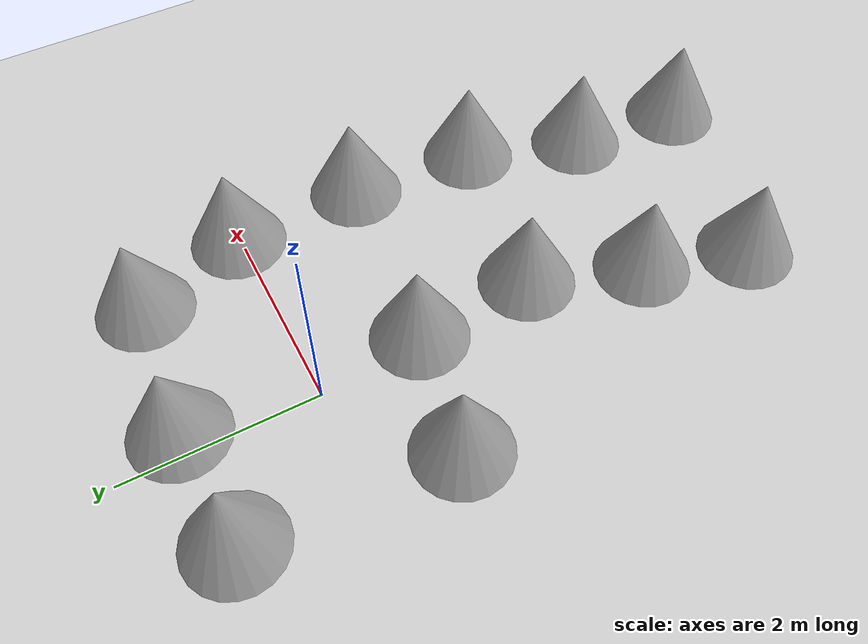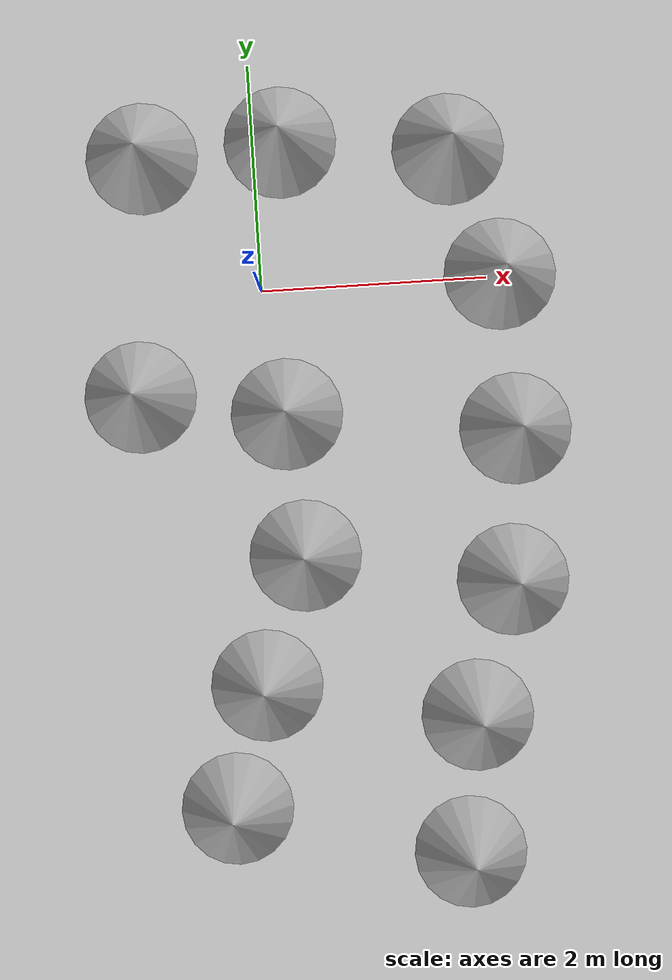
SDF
<sdf version='1.10'>
  <world name='empty'>
    <physics name='1ms' type='ignored'>
      <max_step_size>0.001</max_step_size>
      <real_time_factor>1</real_time_factor>
      <real_time_update_rate>1000</real_time_update_rate>
    </physics>
    <plugin name='gz::sim::systems::Physics' filename='gz-sim-physics-system'/>
    <plugin name='gz::sim::systems::UserCommands' filename='gz-sim-user-commands-system'/>
    <plugin name='gz::sim::systems::SceneBroadcaster' filename='gz-sim-scene-broadcaster-system'/>
    <plugin name='gz::sim::systems::Contact' filename='gz-sim-contact-system'/>

    <plugin filename="gz-sim-sensors-system" name="gz::sim::systems::Sensors">
      <render_engine>ogre</render_engine>
    </plugin>

    <gravity>0 0 -9.8000000000000007</gravity>
    <magnetic_field>5.5644999999999998e-06 2.2875799999999999e-05 -4.2388400000000002e-05</magnetic_field>
    <atmosphere type='adiabatic'/>
    <scene>
      <ambient>0.400000006 0.400000006 0.400000006 1</ambient>
      <background>0.699999988 0.699999988 0.699999988 1</background>
      <shadows>true</shadows>
    </scene>
    <model name='ground_plane'>
      <static>true</static>
      <link name='link'>
        <collision name='collision'>
          <geometry>
            <plane>
              <normal>0 0 1</normal>
              <size>100 100</size>
            </plane>
          </geometry>
          <surface>
            <friction>
              <ode/>
            </friction>
            <bounce/>
            <contact/>
          </surface>
        </collision>
        <visual name='visual'>
          <geometry>
            <plane>
              <normal>0 0 1</normal>
              <size>100 100</size>
            </plane>
          </geometry>
          <material>
            <ambient>0.800000012 0.800000012 0.800000012 1</ambient>
            <diffuse>0.800000012 0.800000012 0.800000012 1</diffuse>
            <specular>0.800000012 0.800000012 0.800000012 1</specular>
          </material>
        </visual>
        <pose>0 0 0 0 0 0</pose>
        <inertial>
          <pose>0 0 0 0 0 0</pose>
          <mass>1</mass>
          <inertia>
            <ixx>1</ixx>
            <ixy>0</ixy>
            <ixz>0</ixz>
            <iyy>1</iyy>
            <iyz>0</iyz>
            <izz>1</izz>
          </inertia>
        </inertial>
        <enable_wind>false</enable_wind>
      </link>
      <pose>0 0 0 0 0 0</pose>
      <self_collide>false</self_collide>
    </model>
    <model name='cone'>
      <pose>0.24221028216544344 1.3106896720690939 0.49999999993296756 5.2542459743498789e-17 -7.7132841040630513e-10 -1.1855016086255925e-22</pose>
      <link name='cone_link'>
        <inertial>
          <inertia>
            <ixx>0.074999999999999997</ixx>
            <ixy>0</ixy>
            <ixz>0</ixz>
            <iyy>0.074999999999999997</iyy>
            <iyz>0</iyz>
            <izz>0.074999999999999997</izz>
          </inertia>
          <mass>1</mass>
          <pose>0 0 0 0 0 0</pose>
        </inertial>
        <collision name='cone_collision'>
          <geometry>
            <cone>
              <radius>0.5</radius>
              <length>1</length>
            </cone>
          </geometry>
          <surface>
            <friction>
              <ode/>
            </friction>
            <bounce/>
            <contact/>
          </surface>
        </collision>
        <visual name='cone_visual'>
          <geometry>
            <cone>
              <radius>0.5</radius>
              <length>1</length>
            </cone>
          </geometry>
          <material>
            <ambient>0.300000012 0.300000012 0.300000012 1</ambient>
            <diffuse>0.699999988 0.699999988 0.699999988 1</diffuse>
            <specular>1 1 1 1</specular>
          </material>
        </visual>
        <pose>0 0 0 0 0 0</pose>
        <enable_wind>false</enable_wind>
      </link>
      <static>false</static>
      <self_collide>false</self_collide>
    </model>
    <model name='cone_0'>
      <pose>1.7298803824464843 1.1591823210420871 0.49999999993296756 5.2548876465811307e-17 -7.713284103706065e-10 -1.8784284056842546e-22</pose>
      <link name='cone_link'>
        <inertial>
          <inertia>
            <ixx>0.074999999999999997</ixx>
            <ixy>0</ixy>
            <ixz>0</ixz>
            <iyy>0.074999999999999997</iyy>
            <iyz>0</iyz>
            <izz>0.074999999999999997</izz>
          </inertia>
          <mass>1</mass>
          <pose>0 0 0 0 0 0</pose>
        </inertial>
        <collision name='cone_collision'>
          <geometry>
            <cone>
              <radius>0.5</radius>
              <length>1</length>
            </cone>
          </geometry>
          <surface>
            <friction>
              <ode/>
            </friction>
            <bounce/>
            <contact/>
          </surface>
        </collision>
        <visual name='cone_visual'>
          <geometry>
            <cone>
              <radius>0.5</radius>
              <length>1</length>
            </cone>
          </geometry>
          <material>
            <ambient>0.300000012 0.300000012 0.300000012 1</ambient>
            <diffuse>0.699999988 0.699999988 0.699999988 1</diffuse>
            <specular>1 1 1 1</specular>
          </material>
        </visual>
        <pose>0 0 0 0 0 0</pose>
        <enable_wind>false</enable_wind>
      </link>
      <static>false</static>
      <self_collide>false</self_collide>
    </model>
    <model name='cone_1'>
      <pose>2.1241009359931424 0.022126792105507498 0.49999999993296756 5.2544987975732369e-17 -7.7132841042377457e-10 -9.1533761874780176e-23</pose>
      <link name='cone_link'>
        <inertial>
          <inertia>
            <ixx>0.074999999999999997</ixx>
            <ixy>0</ixy>
            <ixz>0</ixz>
            <iyy>0.074999999999999997</iyy>
            <iyz>0</iyz>
            <izz>0.074999999999999997</izz>
          </inertia>
          <mass>1</mass>
          <pose>0 0 0 0 0 0</pose>
        </inertial>
        <collision name='cone_collision'>
          <geometry>
            <cone>
              <radius>0.5</radius>
              <length>1</length>
            </cone>
          </geometry>
          <surface>
            <friction>
              <ode/>
            </friction>
            <bounce/>
            <contact/>
          </surface>
        </collision>
        <visual name='cone_visual'>
          <geometry>
            <cone>
              <radius>0.5</radius>
              <length>1</length>
            </cone>
          </geometry>
          <material>
            <ambient>0.300000012 0.300000012 0.300000012 1</ambient>
            <diffuse>0.699999988 0.699999988 0.699999988 1</diffuse>
            <specular>1 1 1 1</specular>
          </material>
        </visual>
        <pose>0 0 0 0 0 0</pose>
        <enable_wind>false</enable_wind>
      </link>
      <static>false</static>
      <self_collide>false</self_collide>
    </model>
    <model name='cone_2'>
      <pose>2.1769292694685256 -1.3601867834825385 0.49999999993296756 5.2548969694099936e-17 -7.7132841040276128e-10 -2.0470694501009284e-22</pose>
      <link name='cone_link'>
        <inertial>
          <inertia>
            <ixx>0.074999999999999997</ixx>
            <ixy>0</ixy>
            <ixz>0</ixz>
            <iyy>0.074999999999999997</iyy>
            <iyz>0</iyz>
            <izz>0.074999999999999997</izz>
          </inertia>
          <mass>1</mass>
          <pose>0 0 0 0 0 0</pose>
        </inertial>
        <collision name='cone_collision'>
          <geometry>
            <cone>
              <radius>0.5</radius>
              <length>1</length>
            </cone>
          </geometry>
          <surface>
            <friction>
              <ode/>
            </friction>
            <bounce/>
            <contact/>
          </surface>
        </collision>
        <visual name='cone_visual'>
          <geometry>
            <cone>
              <radius>0.5</radius>
              <length>1</length>
            </cone>
          </geometry>
          <material>
            <ambient>0.300000012 0.300000012 0.300000012 1</ambient>
            <diffuse>0.699999988 0.699999988 0.699999988 1</diffuse>
            <specular>1 1 1 1</specular>
          </material>
        </visual>
        <pose>0 0 0 0 0 0</pose>
        <enable_wind>false</enable_wind>
      </link>
      <static>false</static>
      <self_collide>false</self_collide>
    </model>
    <model name='cone_3'>
      <pose>2.0727332312484088 -2.7004181686616811 0.49999999993296756 5.2543585063411858e-17 -7.7132841043066198e-10 -7.0821554077703735e-23</pose>
      <link name='cone_link'>
        <inertial>
          <inertia>
            <ixx>0.074999999999999997</ixx>
            <ixy>0</ixy>
            <ixz>0</ixz>
            <iyy>0.074999999999999997</iyy>
            <iyz>0</iyz>
            <izz>0.074999999999999997</izz>
          </inertia>
          <mass>1</mass>
          <pose>0 0 0 0 0 0</pose>
        </inertial>
        <collision name='cone_collision'>
          <geometry>
            <cone>
              <radius>0.5</radius>
              <length>1</length>
            </cone>
          </geometry>
          <surface>
            <friction>
              <ode/>
            </friction>
            <bounce/>
            <contact/>
          </surface>
        </collision>
        <visual name='cone_visual'>
          <geometry>
            <cone>
              <radius>0.5</radius>
              <length>1</length>
            </cone>
          </geometry>
          <material>
            <ambient>0.300000012 0.300000012 0.300000012 1</ambient>
            <diffuse>0.699999988 0.699999988 0.699999988 1</diffuse>
            <specular>1 1 1 1</specular>
          </material>
        </visual>
        <pose>0 0 0 0 0 0</pose>
        <enable_wind>false</enable_wind>
      </link>
      <static>false</static>
      <self_collide>false</self_collide>
    </model>
    <model name='cone_4'>
      <pose>1.6838038095773604 -3.8860721555839044 0.49999999993296756 5.2542448694169758e-17 -7.7132841036291103e-10 -1.2097262827116141e-22</pose>
      <link name='cone_link'>
        <inertial>
          <inertia>
            <ixx>0.074999999999999997</ixx>
            <ixy>0</ixy>
            <ixz>0</ixz>
            <iyy>0.074999999999999997</iyy>
            <iyz>0</iyz>
            <izz>0.074999999999999997</izz>
          </inertia>
          <mass>1</mass>
          <pose>0 0 0 0 0 0</pose>
        </inertial>
        <collision name='cone_collision'>
          <geometry>
            <cone>
              <radius>0.5</radius>
              <length>1</length>
            </cone>
          </geometry>
          <surface>
            <friction>
              <ode/>
            </friction>
            <bounce/>
            <contact/>
          </surface>
        </collision>
        <visual name='cone_visual'>
          <geometry>
            <cone>
              <radius>0.5</radius>
              <length>1</length>
            </cone>
          </geometry>
          <material>
            <ambient>0.300000012 0.300000012 0.300000012 1</ambient>
            <diffuse>0.699999988 0.699999988 0.699999988 1</diffuse>
            <specular>1 1 1 1</specular>
          </material>
        </visual>
        <pose>0 0 0 0 0 0</pose>
        <enable_wind>false</enable_wind>
      </link>
      <static>false</static>
      <self_collide>false</self_collide>
    </model>
    <model name='cone_5'>
      <pose>1.5476485248367911 -5.0980476647762956 0.49999999993296756 5.2549568086337689e-17 -7.7132841037102609e-10 2.4181897847869472e-23</pose>
      <link name='cone_link'>
        <inertial>
          <inertia>
            <ixx>0.074999999999999997</ixx>
            <ixy>0</ixy>
            <ixz>0</ixz>
            <iyy>0.074999999999999997</iyy>
            <iyz>0</iyz>
            <izz>0.074999999999999997</izz>
          </inertia>
          <mass>1</mass>
          <pose>0 0 0 0 0 0</pose>
        </inertial>
        <collision name='cone_collision'>
          <geometry>
            <cone>
              <radius>0.5</radius>
              <length>1</length>
            </cone>
          </geometry>
          <surface>
            <friction>
              <ode/>
            </friction>
            <bounce/>
            <contact/>
          </surface>
        </collision>
        <visual name='cone_visual'>
          <geometry>
            <cone>
              <radius>0.5</radius>
              <length>1</length>
            </cone>
          </geometry>
          <material>
            <ambient>0.300000012 0.300000012 0.300000012 1</ambient>
            <diffuse>0.699999988 0.699999988 0.699999988 1</diffuse>
            <specular>1 1 1 1</specular>
          </material>
        </visual>
        <pose>0 0 0 0 0 0</pose>
        <enable_wind>false</enable_wind>
      </link>
      <static>false</static>
      <self_collide>false</self_collide>
    </model>
    <model name='cone_6'>
      <pose>-0.99382622643859175 1.2405596565273438 0.49999999993296756 5.2542459743498789e-17 -7.7132841040630513e-10 -1.1855016086255925e-22</pose>
      <link name='cone_link'>
        <inertial>
          <inertia>
            <ixx>0.074999999999999997</ixx>
            <ixy>0</ixy>
            <ixz>0</ixz>
            <iyy>0.074999999999999997</iyy>
            <iyz>0</iyz>
            <izz>0.074999999999999997</izz>
          </inertia>
          <mass>1</mass>
          <pose>0 0 0 0 0 0</pose>
        </inertial>
        <collision name='cone_collision'>
          <geometry>
            <cone>
              <radius>0.5</radius>
              <length>1</length>
            </cone>
          </geometry>
          <surface>
            <friction>
              <ode/>
            </friction>
            <bounce/>
            <contact/>
          </surface>
        </collision>
        <visual name='cone_visual'>
          <geometry>
            <cone>
              <radius>0.5</radius>
              <length>1</length>
            </cone>
          </geometry>
          <material>
            <ambient>0.300000012 0.300000012 0.300000012 1</ambient>
            <diffuse>0.699999988 0.699999988 0.699999988 1</diffuse>
            <specular>1 1 1 1</specular>
          </material>
        </visual>
        <pose>0 0 0 0 0 0</pose>
        <enable_wind>false</enable_wind>
      </link>
      <static>false</static>
      <self_collide>false</self_collide>
    </model>
    <model name='cone_7'>
      <pose>-1.1362480620466706 -0.87882621988431731 0.49999999993296756 5.2547832261998607e-17 -7.7132841037183135e-10 9.2717783491378131e-23</pose>
      <link name='cone_link'>
        <inertial>
          <inertia>
            <ixx>0.074999999999999997</ixx>
            <ixy>0</ixy>
            <ixz>0</ixz>
            <iyy>0.074999999999999997</iyy>
            <iyz>0</iyz>
            <izz>0.074999999999999997</izz>
          </inertia>
          <mass>1</mass>
          <pose>0 0 0 0 0 0</pose>
        </inertial>
        <collision name='cone_collision'>
          <geometry>
            <cone>
              <radius>0.5</radius>
              <length>1</length>
            </cone>
          </geometry>
          <surface>
            <friction>
              <ode/>
            </friction>
            <bounce/>
            <contact/>
          </surface>
        </collision>
        <visual name='cone_visual'>
          <geometry>
            <cone>
              <radius>0.5</radius>
              <length>1</length>
            </cone>
          </geometry>
          <material>
            <ambient>0.300000012 0.300000012 0.300000012 1</ambient>
            <diffuse>0.699999988 0.699999988 0.699999988 1</diffuse>
            <specular>1 1 1 1</specular>
          </material>
        </visual>
        <pose>0 0 0 0 0 0</pose>
        <enable_wind>false</enable_wind>
      </link>
      <static>false</static>
      <self_collide>false</self_collide>
    </model>
    <model name='cone_8'>
      <pose>0.1546511583564682 -1.1085026145587373 0.49999999993296756 5.254428576675585e-17 -7.7132841040301264e-10 4.1570013297482444e-23</pose>
      <link name='cone_link'>
        <inertial>
          <inertia>
            <ixx>0.074999999999999997</ixx>
            <ixy>0</ixy>
            <ixz>0</ixz>
            <iyy>0.074999999999999997</iyy>
            <iyz>0</iyz>
            <izz>0.074999999999999997</izz>
          </inertia>
          <mass>1</mass>
          <pose>0 0 0 0 0 0</pose>
        </inertial>
        <collision name='cone_collision'>
          <geometry>
            <cone>
              <radius>0.5</radius>
              <length>1</length>
            </cone>
          </geometry>
          <surface>
            <friction>
              <ode/>
            </friction>
            <bounce/>
            <contact/>
          </surface>
        </collision>
        <visual name='cone_visual'>
          <geometry>
            <cone>
              <radius>0.5</radius>
              <length>1</length>
            </cone>
          </geometry>
          <material>
            <ambient>0.300000012 0.300000012 0.300000012 1</ambient>
            <diffuse>0.699999988 0.699999988 0.699999988 1</diffuse>
            <specular>1 1 1 1</specular>
          </material>
        </visual>
        <pose>0 0 0 0 0 0</pose>
        <enable_wind>false</enable_wind>
      </link>
      <static>false</static>
      <self_collide>false</self_collide>
    </model>
    <model name='cone_9'>
      <pose>0.24221016335853424 -2.3759774177024671 0.49999999993296756 5.2542448694169758e-17 -7.7132841036291103e-10 -1.2097262827116141e-22</pose>
      <link name='cone_link'>
        <inertial>
          <inertia>
            <ixx>0.074999999999999997</ixx>
            <ixy>0</ixy>
            <ixz>0</ixz>
            <iyy>0.074999999999999997</iyy>
            <iyz>0</iyz>
            <izz>0.074999999999999997</izz>
          </inertia>
          <mass>1</mass>
          <pose>0 0 0 0 0 0</pose>
        </inertial>
        <collision name='cone_collision'>
          <geometry>
            <cone>
              <radius>0.5</radius>
              <length>1</length>
            </cone>
          </geometry>
          <surface>
            <friction>
              <ode/>
            </friction>
            <bounce/>
            <contact/>
          </surface>
        </collision>
        <visual name='cone_visual'>
          <geometry>
            <cone>
              <radius>0.5</radius>
              <length>1</length>
            </cone>
          </geometry>
          <material>
            <ambient>0.300000012 0.300000012 0.300000012 1</ambient>
            <diffuse>0.699999988 0.699999988 0.699999988 1</diffuse>
            <specular>1 1 1 1</specular>
          </material>
        </visual>
        <pose>0 0 0 0 0 0</pose>
        <enable_wind>false</enable_wind>
      </link>
      <static>false</static>
      <self_collide>false</self_collide>
    </model>
    <model name='cone_10'>
      <pose>-0.17062175951642994 -3.5093449613863119 0.49999999993296756 5.2543324730195825e-17 -7.7132841034197333e-10 -2.0409140959736922e-22</pose>
      <link name='cone_link'>
        <inertial>
          <inertia>
            <ixx>0.074999999999999997</ixx>
            <ixy>0</ixy>
            <ixz>0</ixz>
            <iyy>0.074999999999999997</iyy>
            <iyz>0</iyz>
            <izz>0.074999999999999997</izz>
          </inertia>
          <mass>1</mass>
          <pose>0 0 0 0 0 0</pose>
        </inertial>
        <collision name='cone_collision'>
          <geometry>
            <cone>
              <radius>0.5</radius>
              <length>1</length>
            </cone>
          </geometry>
          <surface>
            <friction>
              <ode/>
            </friction>
            <bounce/>
            <contact/>
          </surface>
        </collision>
        <visual name='cone_visual'>
          <geometry>
            <cone>
              <radius>0.5</radius>
              <length>1</length>
            </cone>
          </geometry>
          <material>
            <ambient>0.300000012 0.300000012 0.300000012 1</ambient>
            <diffuse>0.699999988 0.699999988 0.699999988 1</diffuse>
            <specular>1 1 1 1</specular>
          </material>
        </visual>
        <pose>0 0 0 0 0 0</pose>
        <enable_wind>false</enable_wind>
      </link>
      <static>false</static>
      <self_collide>false</self_collide>
    </model>
    <model name='cone_11'>
      <pose>-0.49935308018537899 -4.5870286284475137 0.49999999993296756 5.2546463453552106e-17 -7.7132841037379911e-10 1.3592037949218537e-23</pose>
      <link name='cone_link'>
        <inertial>
          <inertia>
            <ixx>0.074999999999999997</ixx>
            <ixy>0</ixy>
            <ixz>0</ixz>
            <iyy>0.074999999999999997</iyy>
            <iyz>0</iyz>
            <izz>0.074999999999999997</izz>
          </inertia>
          <mass>1</mass>
          <pose>0 0 0 0 0 0</pose>
        </inertial>
        <collision name='cone_collision'>
          <geometry>
            <cone>
              <radius>0.5</radius>
              <length>1</length>
            </cone>
          </geometry>
          <surface>
            <friction>
              <ode/>
            </friction>
            <bounce/>
            <contact/>
          </surface>
        </collision>
        <visual name='cone_visual'>
          <geometry>
            <cone>
              <radius>0.5</radius>
              <length>1</length>
            </cone>
          </geometry>
          <material>
            <ambient>0.300000012 0.300000012 0.300000012 1</ambient>
            <diffuse>0.699999988 0.699999988 0.699999988 1</diffuse>
            <specular>1 1 1 1</specular>
          </material>
        </visual>
        <pose>0 0 0 0 0 0</pose>
        <enable_wind>false</enable_wind>
      </link>
      <static>false</static>
      <self_collide>false</self_collide>
    </model>
    <light name='sun' type='directional'>
      <pose>0 0 10 0 0 0</pose>
      <cast_shadows>true</cast_shadows>
      <intensity>1</intensity>
      <direction>-0.5 0.10000000000000001 -0.90000000000000002</direction>
      <diffuse>0.800000012 0.800000012 0.800000012 1</diffuse>
      <specular>0.200000003 0.200000003 0.200000003 1</specular>
      <attenuation>
        <range>1000</range>
        <linear>0.01</linear>
        <constant>0.90000000000000002</constant>
        <quadratic>0.001</quadratic>
      </attenuation>
      <spot>
        <inner_angle>0</inner_angle>
        <outer_angle>0</outer_angle>
        <falloff>0</falloff>
      </spot>
    </light>
  </world>
</sdf>
